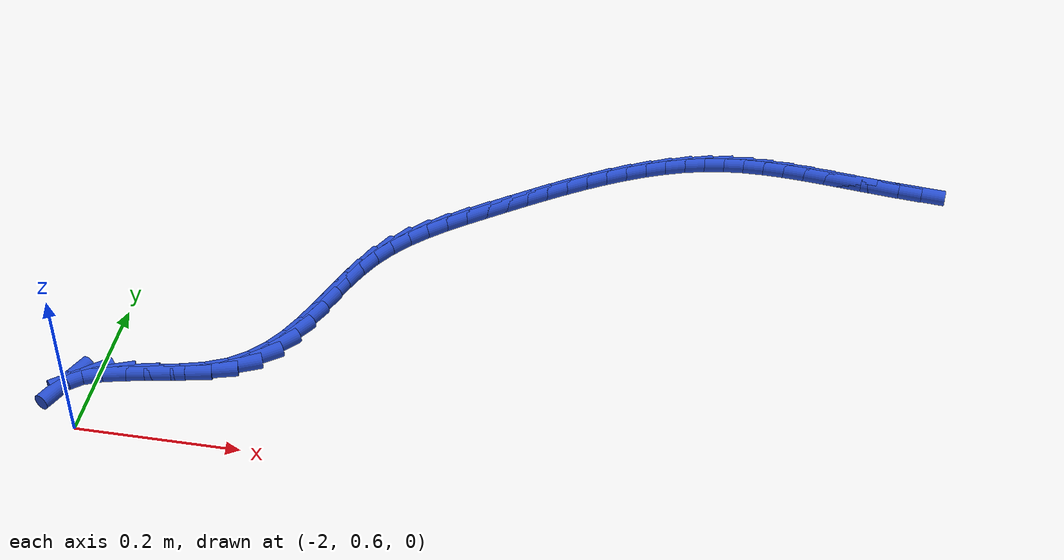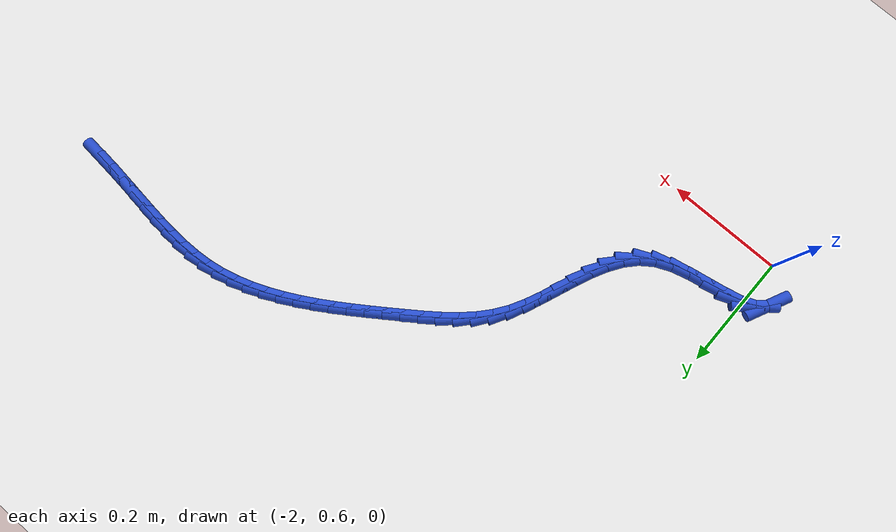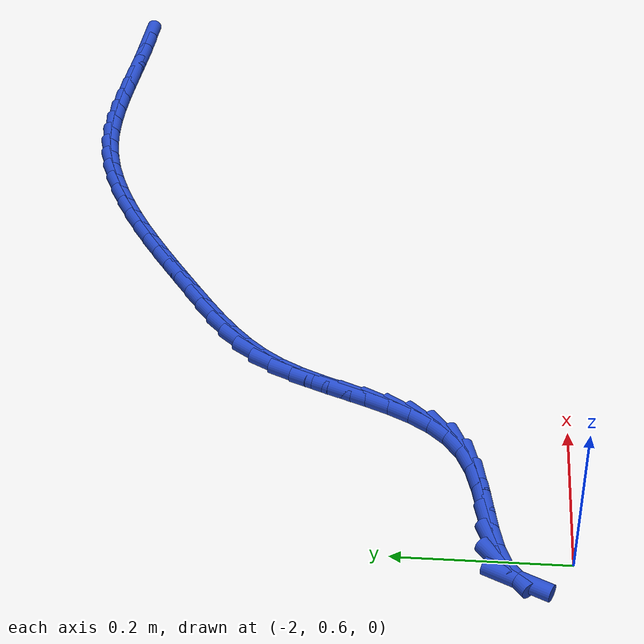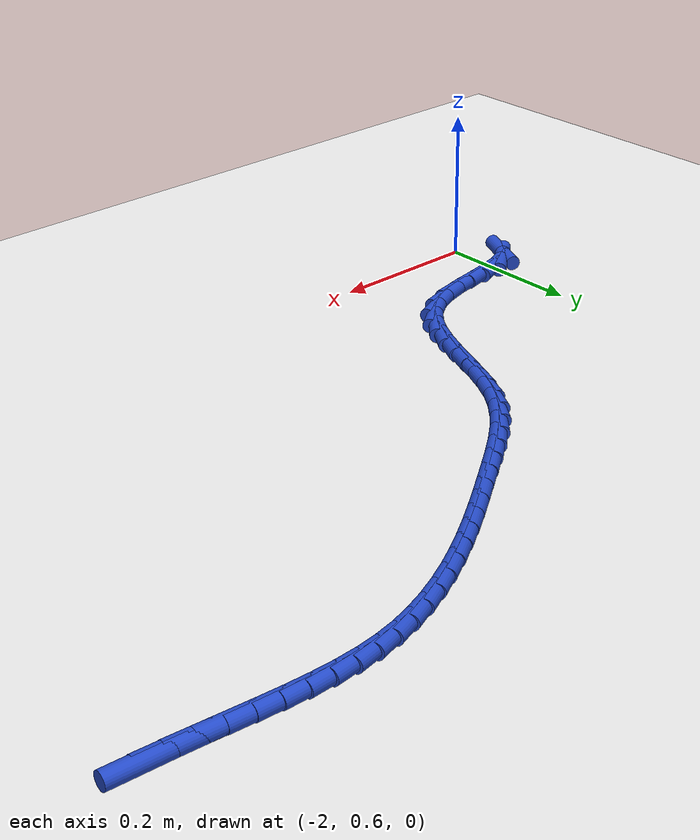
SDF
<sdf version="1.6">
 <world name="default">
  <model name="ground_plane">
   <static>1</static>
   <link name="link">
    <collision name="collision">
     <geometry><plane><normal>0 0 1</normal><size>100 100</size></plane></geometry>
     <surface><friction><ode><mu>100</mu><mu2>50</mu2></ode></friction></surface>
    </collision>
    <visual name="visual">
     <cast_shadows>0</cast_shadows>
     <geometry><plane><normal>0 0 1</normal><size>100 100</size></plane></geometry>
     <material>
      <script><uri>file://media/materials/scripts/gazebo.material</uri><name>Gazebo/WhiteGlow</name></script>
     </material>
    </visual>
   </link>
  </model>
  <model name="line">
   <link name="link_64">
    <pose>-1.0445351220330914 1.1880188436059025 0.01 0 1.57 -0.09585402484050758</pose>
    <collision name="collision">
     <geometry><cylinder><radius>0.01</radius><length>0.08</length></cylinder></geometry>
    </collision>
    <visual name="visual">
     <material>
      <script><name>Gazebo/Blue</name><uri>file://media/materials/scripts/gazebo.material</uri></script>
     </material>
     <geometry><cylinder><radius>0.01</radius><length>0.08</length></cylinder></geometry>
    </visual>
   </link>
   <link name="link_65">
    <pose>-1.074843673145912 1.1909329706829004 0.01 0 1.57 -0.11321383145490625</pose>
    <collision name="collision">
     <geometry><cylinder><radius>0.01</radius><length>0.08</length></cylinder></geometry>
    </collision>
    <visual name="visual">
     <material>
      <script><name>Gazebo/Blue</name><uri>file://media/materials/scripts/gazebo.material</uri></script>
     </material>
     <geometry><cylinder><radius>0.01</radius><length>0.08</length></cylinder></geometry>
    </visual>
   </link>
   <link name="link_66">
    <pose>-1.1046064268935682 1.1943169965444433 0.01 0 1.57 -0.1245438298746847</pose>
    <collision name="collision">
     <geometry><cylinder><radius>0.01</radius><length>0.08</length></cylinder></geometry>
    </collision>
    <visual name="visual">
     <material>
      <script><name>Gazebo/Blue</name><uri>file://media/materials/scripts/gazebo.material</uri></script>
     </material>
     <geometry><cylinder><radius>0.01</radius><length>0.08</length></cylinder></geometry>
    </visual>
   </link>
   <link name="link_67">
    <pose>-1.133800254337698 1.1979718240710742 0.01 0 1.57 -0.1238253846497848</pose>
    <collision name="collision">
     <geometry><cylinder><radius>0.01</radius><length>0.08</length></cylinder></geometry>
    </collision>
    <visual name="visual">
     <material>
      <script><name>Gazebo/Blue</name><uri>file://media/materials/scripts/gazebo.material</uri></script>
     </material>
     <geometry><cylinder><radius>0.01</radius><length>0.08</length></cylinder></geometry>
    </visual>
   </link>
   <link name="link_68">
    <pose>-1.162464890086633 1.2015394862798119 0.01 0 1.57 -0.11035508006265995</pose>
    <collision name="collision">
     <geometry><cylinder><radius>0.01</radius><length>0.08</length></cylinder></geometry>
    </collision>
    <visual name="visual">
     <material>
      <script><name>Gazebo/Blue</name><uri>file://media/materials/scripts/gazebo.material</uri></script>
     </material>
     <geometry><cylinder><radius>0.01</radius><length>0.08</length></cylinder></geometry>
    </visual>
   </link>
   <link name="link_69">
    <pose>-1.190640285649399 1.204661468032417 0.01 0 1.57 -0.08340188536008424</pose>
    <collision name="collision">
     <geometry><cylinder><radius>0.01</radius><length>0.08</length></cylinder></geometry>
    </collision>
    <visual name="visual">
     <material>
      <script><name>Gazebo/Blue</name><uri>file://media/materials/scripts/gazebo.material</uri></script>
     </material>
     <geometry><cylinder><radius>0.01</radius><length>0.08</length></cylinder></geometry>
    </visual>
   </link>
   <link name="link_70">
    <pose>-1.218366392535023 1.2069792541906494 0.01 0 1.57 -0.04225930660614675</pose>
    <collision name="collision">
     <geometry><cylinder><radius>0.01</radius><length>0.08</length></cylinder></geometry>
    </collision>
    <visual name="visual">
     <material>
      <script><name>Gazebo/Blue</name><uri>file://media/materials/scripts/gazebo.material</uri></script>
     </material>
     <geometry><cylinder><radius>0.01</radius><length>0.08</length></cylinder></geometry>
    </visual>
   </link>
   <link name="link_71">
    <pose>-1.2456831622525302 1.2081343296162705 0.01 0 1.57 0.013586770191214691</pose>
    <collision name="collision">
     <geometry><cylinder><radius>0.01</radius><length>0.08</length></cylinder></geometry>
    </collision>
    <visual name="visual">
     <material>
      <script><name>Gazebo/Blue</name><uri>file://media/materials/scripts/gazebo.material</uri></script>
     </material>
     <geometry><cylinder><radius>0.01</radius><length>0.08</length></cylinder></geometry>
    </visual>
   </link>
   <link name="link_72">
    <pose>-1.272630546310947 1.2077681791710402 0.01 0 1.57 0.08417569713119226</pose>
    <collision name="collision">
     <geometry><cylinder><radius>0.01</radius><length>0.08</length></cylinder></geometry>
    </collision>
    <visual name="visual">
     <material>
      <script><name>Gazebo/Blue</name><uri>file://media/materials/scripts/gazebo.material</uri></script>
     </material>
     <geometry><cylinder><radius>0.01</radius><length>0.08</length></cylinder></geometry>
    </visual>
   </link>
   <link name="link_73">
    <pose>-1.2992484962192994 1.2055222877167189 0.01 0 1.57 0.16746965946704298</pose>
    <collision name="collision">
     <geometry><cylinder><radius>0.01</radius><length>0.08</length></cylinder></geometry>
    </collision>
    <visual name="visual">
     <material>
      <script><name>Gazebo/Blue</name><uri>file://media/materials/scripts/gazebo.material</uri></script>
     </material>
     <geometry><cylinder><radius>0.01</radius><length>0.08</length></cylinder></geometry>
    </visual>
   </link>
   <link name="link_74">
    <pose>-1.3255750131818465 1.201071709784859 0.01 0 1.57 0.24957046050574636</pose>
    <collision name="collision">
     <geometry><cylinder><radius>0.01</radius><length>0.08</length></cylinder></geometry>
    </collision>
    <visual name="visual">
     <material>
      <script><name>Gazebo/Blue</name><uri>file://media/materials/scripts/gazebo.material</uri></script>
     </material>
     <geometry><cylinder><radius>0.01</radius><length>0.08</length></cylinder></geometry>
    </visual>
   </link>
   <link name="link_75">
    <pose>-1.3516283676796779 1.194431115475241 0.01 0 1.57 0.3225542530124616</pose>
    <collision name="collision">
     <geometry><cylinder><radius>0.01</radius><length>0.08</length></cylinder></geometry>
    </collision>
    <visual name="visual">
     <material>
      <script><name>Gazebo/Blue</name><uri>file://media/materials/scripts/gazebo.material</uri></script>
     </material>
     <geometry><cylinder><radius>0.01</radius><length>0.08</length></cylinder></geometry>
    </visual>
   </link>
   <link name="link_76">
    <pose>-1.3774153711646164 1.1858124137167372 0.01 0 1.57 0.38628590577283306</pose>
    <collision name="collision">
     <geometry><cylinder><radius>0.01</radius><length>0.08</length></cylinder></geometry>
    </collision>
    <visual name="visual">
     <material>
      <script><name>Gazebo/Blue</name><uri>file://media/materials/scripts/gazebo.material</uri></script>
     </material>
     <geometry><cylinder><radius>0.01</radius><length>0.08</length></cylinder></geometry>
    </visual>
   </link>
   <link name="link_77">
    <pose>-1.4029426938488698 1.1754299445286753 0.01 0 1.57 0.4410761045882603</pose>
    <collision name="collision">
     <geometry><cylinder><radius>0.01</radius><length>0.08</length></cylinder></geometry>
    </collision>
    <visual name="visual">
     <material>
      <script><name>Gazebo/Blue</name><uri>file://media/materials/scripts/gazebo.material</uri></script>
     </material>
     <geometry><cylinder><radius>0.01</radius><length>0.08</length></cylinder></geometry>
    </visual>
   </link>
   <link name="link_78">
    <pose>-1.4282170059446446 1.1634980479303807 0.01 0 1.57 0.48742592240393934</pose>
    <collision name="collision">
     <geometry><cylinder><radius>0.01</radius><length>0.08</length></cylinder></geometry>
    </collision>
    <visual name="visual">
     <material>
      <script><name>Gazebo/Blue</name><uri>file://media/materials/scripts/gazebo.material</uri></script>
     </material>
     <geometry><cylinder><radius>0.01</radius><length>0.08</length></cylinder></geometry>
    </visual>
   </link>
   <link name="link_79">
    <pose>-1.4532449776641478 1.1502310639411808 0.01 0 1.57 0.5259011931024165</pose>
    <collision name="collision">
     <geometry><cylinder><radius>0.01</radius><length>0.08</length></cylinder></geometry>
    </collision>
    <visual name="visual">
     <material>
      <script><name>Gazebo/Blue</name><uri>file://media/materials/scripts/gazebo.material</uri></script>
     </material>
     <geometry><cylinder><radius>0.01</radius><length>0.08</length></cylinder></geometry>
    </visual>
   </link>
   <link name="link_80">
    <pose>-1.4780332792195856 1.1358433325804016 0.01 0 1.57 0.5570479132157775</pose>
    <collision name="collision">
     <geometry><cylinder><radius>0.01</radius><length>0.08</length></cylinder></geometry>
    </collision>
    <visual name="visual">
     <material>
      <script><name>Gazebo/Blue</name><uri>file://media/materials/scripts/gazebo.material</uri></script>
     </material>
     <geometry><cylinder><radius>0.01</radius><length>0.08</length></cylinder></geometry>
    </visual>
   </link>
   <link name="link_81">
    <pose>-1.5025885808231656 1.1205491938673697 0.01 0 1.57 0.5813398775445501</pose>
    <collision name="collision">
     <geometry><cylinder><radius>0.01</radius><length>0.08</length></cylinder></geometry>
    </collision>
    <visual name="visual">
     <material>
      <script><name>Gazebo/Blue</name><uri>file://media/materials/scripts/gazebo.material</uri></script>
     </material>
     <geometry><cylinder><radius>0.01</radius><length>0.08</length></cylinder></geometry>
    </visual>
   </link>
   <link name="link_82">
    <pose>-1.5269175526870942 1.1045629878214116 0.01 0 1.57 0.599148087081553</pose>
    <collision name="collision">
     <geometry><cylinder><radius>0.01</radius><length>0.08</length></cylinder></geometry>
    </collision>
    <visual name="visual">
     <material>
      <script><name>Gazebo/Blue</name><uri>file://media/materials/scripts/gazebo.material</uri></script>
     </material>
     <geometry><cylinder><radius>0.01</radius><length>0.08</length></cylinder></geometry>
    </visual>
   </link>
   <link name="link_83">
    <pose>-1.551026865023579 1.0880990544618538 0.01 0 1.57 0.610723002453602</pose>
    <collision name="collision">
     <geometry><cylinder><radius>0.01</radius><length>0.08</length></cylinder></geometry>
    </collision>
    <visual name="visual">
     <material>
      <script><name>Gazebo/Blue</name><uri>file://media/materials/scripts/gazebo.material</uri></script>
     </material>
     <geometry><cylinder><radius>0.01</radius><length>0.08</length></cylinder></geometry>
    </visual>
   </link>
   <link name="link_84">
    <pose>-1.5749231880448264 1.0713717338080233 0.01 0 1.57 0.6162303141017211</pose>
    <collision name="collision">
     <geometry><cylinder><radius>0.01</radius><length>0.08</length></cylinder></geometry>
    </collision>
    <visual name="visual">
     <material>
      <script><name>Gazebo/Blue</name><uri>file://media/materials/scripts/gazebo.material</uri></script>
     </material>
     <geometry><cylinder><radius>0.01</radius><length>0.08</length></cylinder></geometry>
    </visual>
   </link>
   <link name="link_85">
    <pose>-1.5986124563598971 1.054594205432014 0.01 0 1.57 0.6233457508246403</pose>
    <collision name="collision">
     <geometry><cylinder><radius>0.01</radius><length>0.08</length></cylinder></geometry>
    </collision>
    <visual name="visual">
     <material>
      <script><name>Gazebo/Blue</name><uri>file://media/materials/scripts/gazebo.material</uri></script>
     </material>
     <geometry><cylinder><radius>0.01</radius><length>0.08</length></cylinder></geometry>
    </visual>
   </link>
   <link name="link_86">
    <pose>-1.6219818306492995 1.0377922776617412 0.01 0 1.57 0.6484741901929597</pose>
    <collision name="collision">
     <geometry><cylinder><radius>0.01</radius><length>0.08</length></cylinder></geometry>
    </collision>
    <visual name="visual">
     <material>
      <script><name>Gazebo/Blue</name><uri>file://media/materials/scripts/gazebo.material</uri></script>
     </material>
     <geometry><cylinder><radius>0.01</radius><length>0.08</length></cylinder></geometry>
    </visual>
   </link>
   <link name="link_87">
    <pose>-1.6446697467046307 1.0205993840635859 0.01 0 1.57 0.6944214004436716</pose>
    <collision name="collision">
     <geometry><cylinder><radius>0.01</radius><length>0.08</length></cylinder></geometry>
    </collision>
    <visual name="visual">
     <material>
      <script><name>Gazebo/Blue</name><uri>file://media/materials/scripts/gazebo.material</uri></script>
     </material>
     <geometry><cylinder><radius>0.01</radius><length>0.08</length></cylinder></geometry>
    </visual>
   </link>
   <link name="link_88">
    <pose>-1.6662833722227939 1.0025996313703576 0.01 0 1.57 0.7619322934020021</pose>
    <collision name="collision">
     <geometry><cylinder><radius>0.01</radius><length>0.08</length></cylinder></geometry>
    </collision>
    <visual name="visual">
     <material>
      <script><name>Gazebo/Blue</name><uri>file://media/materials/scripts/gazebo.material</uri></script>
     </material>
     <geometry><cylinder><radius>0.01</radius><length>0.08</length></cylinder></geometry>
    </visual>
   </link>
   <link name="link_89">
    <pose>-1.686429874900691 0.9833771263148646 0.01 0 1.57 0.851069989912281</pose>
    <collision name="collision">
     <geometry><cylinder><radius>0.01</radius><length>0.08</length></cylinder></geometry>
    </collision>
    <visual name="visual">
     <material>
      <script><name>Gazebo/Blue</name><uri>file://media/materials/scripts/gazebo.material</uri></script>
     </material>
     <geometry><cylinder><radius>0.01</radius><length>0.08</length></cylinder></geometry>
    </visual>
   </link>
   <link name="link_90">
    <pose>-1.7047164224352243 0.9625159756299162 0.01 0 1.57 0.9602770329855053</pose>
    <collision name="collision">
     <geometry><cylinder><radius>0.01</radius><length>0.08</length></cylinder></geometry>
    </collision>
    <visual name="visual">
     <material>
      <script><name>Gazebo/Blue</name><uri>file://media/materials/scripts/gazebo.material</uri></script>
     </material>
     <geometry><cylinder><radius>0.01</radius><length>0.08</length></cylinder></geometry>
    </visual>
   </link>
   <link name="link_91">
    <pose>-1.7207502807914143 0.9396003842819112 0.01 0 1.57 1.0736860688039</pose>
    <collision name="collision">
     <geometry><cylinder><radius>0.01</radius><length>0.08</length></cylinder></geometry>
    </collision>
    <visual name="visual">
     <material>
      <script><name>Gazebo/Blue</name><uri>file://media/materials/scripts/gazebo.material</uri></script>
     </material>
     <geometry><cylinder><radius>0.01</radius><length>0.08</length></cylinder></geometry>
    </visual>
   </link>
   <link name="link_92">
    <pose>-1.7343882048902957 0.9144639585328852 0.01 0 1.57 1.1524266241225876</pose>
    <collision name="collision">
     <geometry><cylinder><radius>0.01</radius><length>0.08</length></cylinder></geometry>
    </collision>
    <visual name="visual">
     <material>
      <script><name>Gazebo/Blue</name><uri>file://media/materials/scripts/gazebo.material</uri></script>
     </material>
     <geometry><cylinder><radius>0.01</radius><length>0.08</length></cylinder></geometry>
    </visual>
   </link>
   <link name="link_93">
    <pose>-1.7462753275488585 0.8877284055365584 0.01 0 1.57 1.1929916420400983</pose>
    <collision name="collision">
     <geometry><cylinder><radius>0.01</radius><length>0.08</length></cylinder></geometry>
    </collision>
    <visual name="visual">
     <material>
      <script><name>Gazebo/Blue</name><uri>file://media/materials/scripts/gazebo.material</uri></script>
     </material>
     <geometry><cylinder><radius>0.01</radius><length>0.08</length></cylinder></geometry>
    </visual>
   </link>
   <link name="link_94">
    <pose>-1.7572121282264463 0.8601707245064454 0.01 0 1.57 1.198252969045722</pose>
    <collision name="collision">
     <geometry><cylinder><radius>0.01</radius><length>0.08</length></cylinder></geometry>
    </collision>
    <visual name="visual">
     <material>
      <script><name>Gazebo/Blue</name><uri>file://media/materials/scripts/gazebo.material</uri></script>
     </material>
     <geometry><cylinder><radius>0.01</radius><length>0.08</length></cylinder></geometry>
    </visual>
   </link>
   <link name="link_95">
    <pose>-1.767999086382403 0.832567914656063 0.01 0 1.57 1.1683758915045233</pose>
    <collision name="collision">
     <geometry><cylinder><radius>0.01</radius><length>0.08</length></cylinder></geometry>
    </collision>
    <visual name="visual">
     <material>
      <script><name>Gazebo/Blue</name><uri>file://media/materials/scripts/gazebo.material</uri></script>
     </material>
     <geometry><cylinder><radius>0.01</radius><length>0.08</length></cylinder></geometry>
    </visual>
   </link>
   <link name="link_96">
    <pose>-1.7794366814760705 0.8056969751989242 0.01 0 1.57 1.1006194203193433</pose>
    <collision name="collision">
     <geometry><cylinder><radius>0.01</radius><length>0.08</length></cylinder></geometry>
    </collision>
    <visual name="visual">
     <material>
      <script><name>Gazebo/Blue</name><uri>file://media/materials/scripts/gazebo.material</uri></script>
     </material>
     <geometry><cylinder><radius>0.01</radius><length>0.08</length></cylinder></geometry>
    </visual>
   </link>
   <link name="link_97">
    <pose>-1.7923253929667944 0.7803349053485461 0.01 0 1.57 0.9901444678344198</pose>
    <collision name="collision">
     <geometry><cylinder><radius>0.01</radius><length>0.08</length></cylinder></geometry>
    </collision>
    <visual name="visual">
     <material>
      <script><name>Gazebo/Blue</name><uri>file://media/materials/scripts/gazebo.material</uri></script>
     </material>
     <geometry><cylinder><radius>0.01</radius><length>0.08</length></cylinder></geometry>
    </visual>
   </link>
   <link name="link_98">
    <pose>-1.8074657003139172 0.7572587043184428 0.01 0 1.57 0.8330238479432786</pose>
    <collision name="collision">
     <geometry><cylinder><radius>0.01</radius><length>0.08</length></cylinder></geometry>
    </collision>
    <visual name="visual">
     <material>
      <script><name>Gazebo/Blue</name><uri>file://media/materials/scripts/gazebo.material</uri></script>
     </material>
     <geometry><cylinder><radius>0.01</radius><length>0.08</length></cylinder></geometry>
    </visual>
   </link>
   <link name="link_99">
    <pose>-1.825658082976782 0.7372453713221293 0.01 0 1.57 0.6329605498818558</pose>
    <collision name="collision">
     <geometry><cylinder><radius>0.01</radius><length>0.08</length></cylinder></geometry>
    </collision>
    <visual name="visual">
     <material>
      <script><name>Gazebo/Blue</name><uri>file://media/materials/scripts/gazebo.material</uri></script>
     </material>
     <geometry><cylinder><radius>0.01</radius><length>0.08</length></cylinder></geometry>
    </visual>
   </link>
   <link name="link_100">
    <pose>-1.847703020414732 0.7210719055731213 0.01 0 1.57 0.41767171156474214</pose>
    <collision name="collision">
     <geometry><cylinder><radius>0.01</radius><length>0.08</length></cylinder></geometry>
    </collision>
    <visual name="visual">
     <material>
      <script><name>Gazebo/Blue</name><uri>file://media/materials/scripts/gazebo.material</uri></script>
     </material>
     <geometry><cylinder><radius>0.01</radius><length>0.08</length></cylinder></geometry>
    </visual>
   </link>
   <link name="link_101">
    <pose>-1.8741705378040876 0.7093260758097083 0.01 0 1.57 0.2683805137090618</pose>
    <collision name="collision">
     <geometry><cylinder><radius>0.01</radius><length>0.08</length></cylinder></geometry>
    </collision>
    <visual name="visual">
     <material>
      <script><name>Gazebo/Blue</name><uri>file://media/materials/scripts/gazebo.material</uri></script>
     </material>
     <geometry><cylinder><radius>0.01</radius><length>0.08</length></cylinder></geometry>
    </visual>
   </link>
   <link name="link_102">
    <pose>-1.903877597892516 0.7011561772567337 0.01 0 1.57 0.19477419620504632</pose>
    <collision name="collision">
     <geometry><cylinder><radius>0.01</radius><length>0.08</length></cylinder></geometry>
    </collision>
    <visual name="visual">
     <material>
      <script><name>Gazebo/Blue</name><uri>file://media/materials/scripts/gazebo.material</uri></script>
     </material>
     <geometry><cylinder><radius>0.01</radius><length>0.08</length></cylinder></geometry>
    </visual>
   </link>
   <link name="link_103">
    <pose>-1.9348354916587747 0.6950489524453539 0.01 0 1.57 0.18201573586810496</pose>
    <collision name="collision">
     <geometry><cylinder><radius>0.01</radius><length>0.08</length></cylinder></geometry>
    </collision>
    <visual name="visual">
     <material>
      <script><name>Gazebo/Blue</name><uri>file://media/materials/scripts/gazebo.material</uri></script>
     </material>
     <geometry><cylinder><radius>0.01</radius><length>0.08</length></cylinder></geometry>
    </visual>
   </link>
   <link name="link_104">
    <pose>-1.9650512622261675 0.6894876559103394 0.01 0 1.57 0.2333675148701604</pose>
    <collision name="collision">
     <geometry><cylinder><radius>0.01</radius><length>0.08</length></cylinder></geometry>
    </collision>
    <visual name="visual">
     <material>
      <script><name>Gazebo/Blue</name><uri>file://media/materials/scripts/gazebo.material</uri></script>
     </material>
     <geometry><cylinder><radius>0.01</radius><length>0.08</length></cylinder></geometry>
    </visual>
   </link>
   <link name="link_105">
    <pose>-1.992531952718001 0.6829555421864619 0.01 0 1.57 0.3774190037734704</pose>
    <collision name="collision">
     <geometry><cylinder><radius>0.01</radius><length>0.08</length></cylinder></geometry>
    </collision>
    <visual name="visual">
     <material>
      <script><name>Gazebo/Blue</name><uri>file://media/materials/scripts/gazebo.material</uri></script>
     </material>
     <geometry><cylinder><radius>0.01</radius><length>0.08</length></cylinder></geometry>
    </visual>
   </link>
   <link name="link_106">
    <pose>-2.015284606257578 0.6739358658084923 0.01 0 1.57 0.6818113752888173</pose>
    <collision name="collision">
     <geometry><cylinder><radius>0.01</radius><length>0.08</length></cylinder></geometry>
    </collision>
    <visual name="visual">
     <material>
      <script><name>Gazebo/Blue</name><uri>file://media/materials/scripts/gazebo.material</uri></script>
     </material>
     <geometry><cylinder><radius>0.01</radius><length>0.08</length></cylinder></geometry>
    </visual>
   </link>
   <link name="link_107">
    <pose>-2.0313241441944183 0.6609171877090465 0.01 0 1.57 1.1314895647831114</pose>
    <collision name="collision">
     <geometry><cylinder><radius>0.01</radius><length>0.08</length></cylinder></geometry>
    </collision>
    <visual name="visual">
     <material>
      <script><name>Gazebo/Blue</name><uri>file://media/materials/scripts/gazebo.material</uri></script>
     </material>
     <geometry><cylinder><radius>0.01</radius><length>0.08</length></cylinder></geometry>
    </visual>
   </link>
  </model>
 </world>
</sdf>
